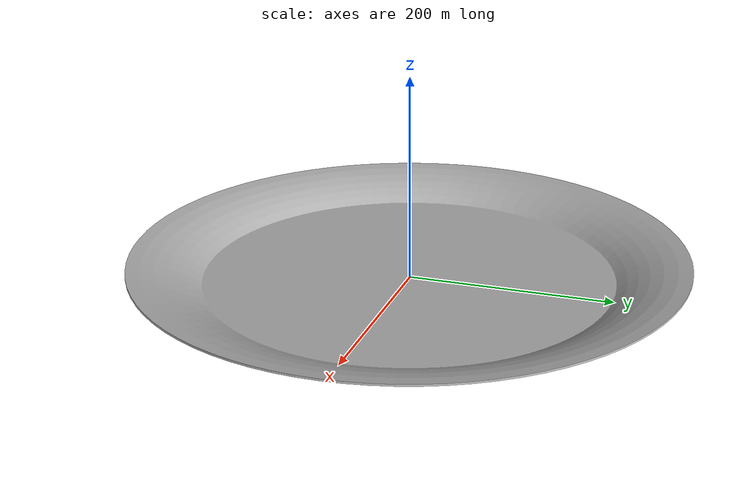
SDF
<sdf version="1.4">
    <model name="plate">
        <pose>3.000000 0.000000 1.000000 0.000000 -0.000000 0.000000</pose>
        <static>1</static>
        <link name="plate_link">
            <pose>0.000000 0.000000 0.000000 0.000000 -0.000000 0.000000</pose>

            <collision name="plate_collision">
                <pose>0.000000 0.000000 0.000000 0.000000 -0.000000 0.000000</pose>
                <geometry>
                    <mesh>
                        <uri>/home/furdek/catkin_ws/src/gazebo_pkg/models/plate/meshes/plate.stl</uri>
                        <scale>1 1 1</scale>
                    </mesh>
                </geometry>

            </collision>

            <visual name="plate_visual">
                <pose>0.000000 0.000000 0.000000 0.000000 -0.000000 0.000000</pose>
                <geometry>
                    <mesh>
                        <uri>/home/furdek/catkin_ws/src/gazebo_pkg/models/plate/meshes/plate.stl</uri>
                        <scale>1 1 1</scale>
                    </mesh>
                </geometry>
            </visual>
        </link>
    </model>
</sdf>
